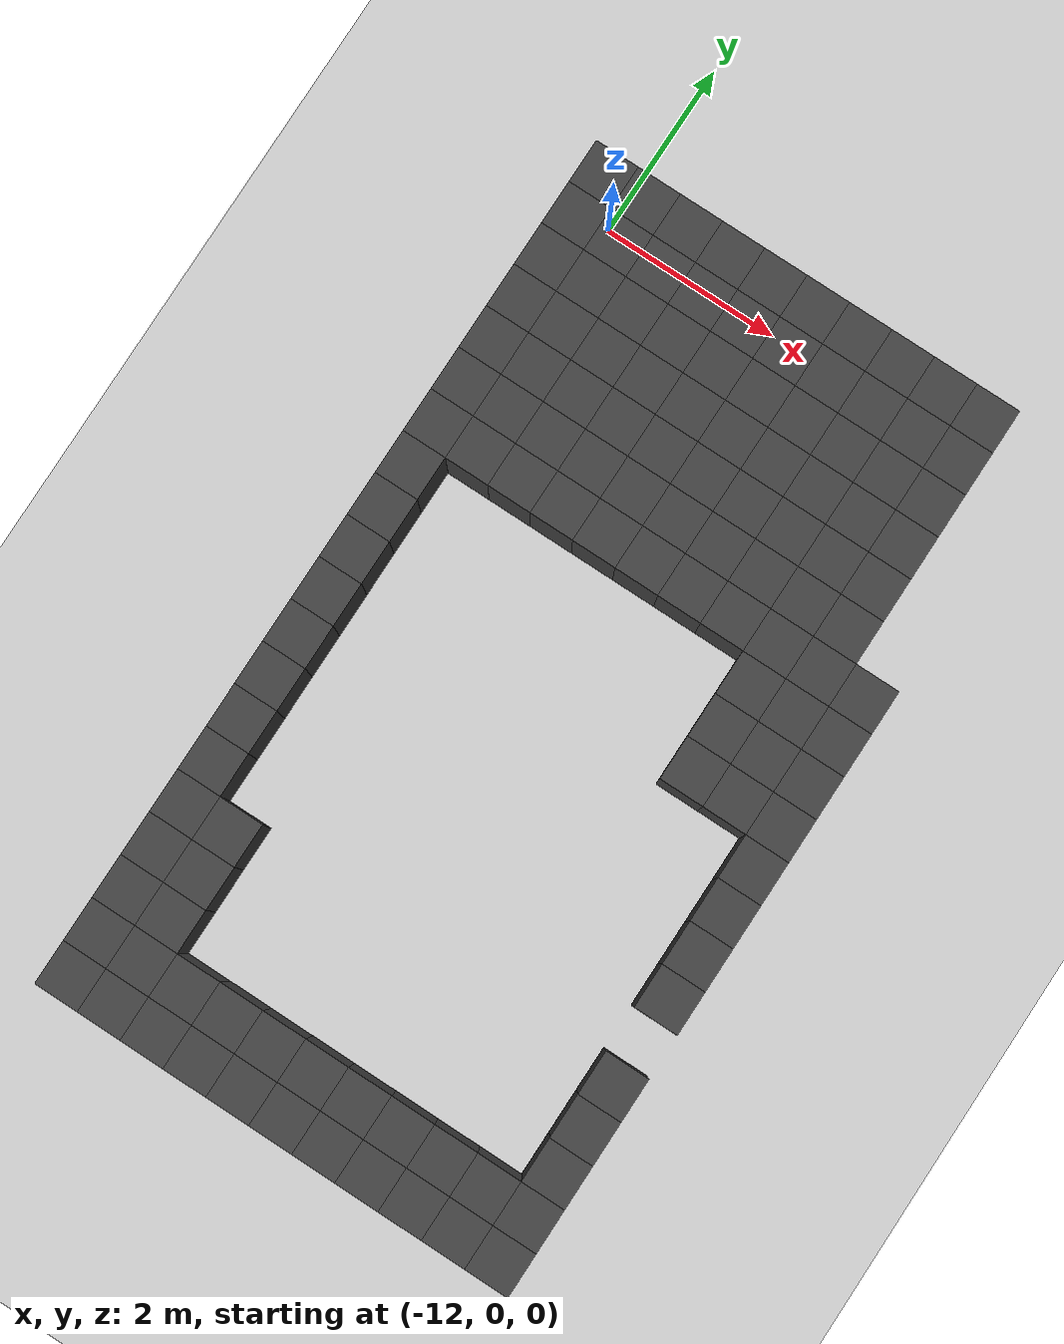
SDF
<sdf version="1.7">
 <world name="map_14074">
  <model name="ground_plane">
   <static>true</static>
   <link name="link">
    <collision name="collision">
     <geometry><plane><normal>0 0 1</normal><size>200 200</size></plane></geometry>
    </collision>
    <visual name="visual">
     <geometry><plane><normal>0 0 1</normal><size>200 200</size></plane></geometry>
     <material><ambient>0.8 0.8 0.8 1</ambient><diffuse>0.8 0.8 0.8 1</diffuse></material>
    </visual>
   </link>
  </model>
  <model name="maze_environment">
   <static>true</static>
   <link name="wall_949">
    <pose>-12.250 0.250 0.500 0 0 0</pose>
    <collision name="col"><geometry><box><size>0.5 0.5 1.0</size></box></geometry></collision>
    <visual name="vis">
     <geometry><box><size>0.5 0.5 1.0</size></box></geometry>
     <material><ambient>0.15 0.15 0.15 1</ambient><diffuse>0.25 0.25 0.25 1</diffuse></material>
    </visual>
   </link>
   <link name="wall_950">
    <pose>-11.750 0.250 0.500 0 0 0</pose>
    <collision name="col"><geometry><box><size>0.5 0.5 1.0</size></box></geometry></collision>
    <visual name="vis">
     <geometry><box><size>0.5 0.5 1.0</size></box></geometry>
     <material><ambient>0.15 0.15 0.15 1</ambient><diffuse>0.25 0.25 0.25 1</diffuse></material>
    </visual>
   </link>
   <link name="wall_951">
    <pose>-11.250 0.250 0.500 0 0 0</pose>
    <collision name="col"><geometry><box><size>0.5 0.5 1.0</size></box></geometry></collision>
    <visual name="vis">
     <geometry><box><size>0.5 0.5 1.0</size></box></geometry>
     <material><ambient>0.15 0.15 0.15 1</ambient><diffuse>0.25 0.25 0.25 1</diffuse></material>
    </visual>
   </link>
   <link name="wall_952">
    <pose>-10.750 0.250 0.500 0 0 0</pose>
    <collision name="col"><geometry><box><size>0.5 0.5 1.0</size></box></geometry></collision>
    <visual name="vis">
     <geometry><box><size>0.5 0.5 1.0</size></box></geometry>
     <material><ambient>0.15 0.15 0.15 1</ambient><diffuse>0.25 0.25 0.25 1</diffuse></material>
    </visual>
   </link>
   <link name="wall_953">
    <pose>-10.250 0.250 0.500 0 0 0</pose>
    <collision name="col"><geometry><box><size>0.5 0.5 1.0</size></box></geometry></collision>
    <visual name="vis">
     <geometry><box><size>0.5 0.5 1.0</size></box></geometry>
     <material><ambient>0.15 0.15 0.15 1</ambient><diffuse>0.25 0.25 0.25 1</diffuse></material>
    </visual>
   </link>
   <link name="wall_954">
    <pose>-9.750 0.250 0.500 0 0 0</pose>
    <collision name="col"><geometry><box><size>0.5 0.5 1.0</size></box></geometry></collision>
    <visual name="vis">
     <geometry><box><size>0.5 0.5 1.0</size></box></geometry>
     <material><ambient>0.15 0.15 0.15 1</ambient><diffuse>0.25 0.25 0.25 1</diffuse></material>
    </visual>
   </link>
   <link name="wall_955">
    <pose>-9.250 0.250 0.500 0 0 0</pose>
    <collision name="col"><geometry><box><size>0.5 0.5 1.0</size></box></geometry></collision>
    <visual name="vis">
     <geometry><box><size>0.5 0.5 1.0</size></box></geometry>
     <material><ambient>0.15 0.15 0.15 1</ambient><diffuse>0.25 0.25 0.25 1</diffuse></material>
    </visual>
   </link>
   <link name="wall_956">
    <pose>-8.750 0.250 0.500 0 0 0</pose>
    <collision name="col"><geometry><box><size>0.5 0.5 1.0</size></box></geometry></collision>
    <visual name="vis">
     <geometry><box><size>0.5 0.5 1.0</size></box></geometry>
     <material><ambient>0.15 0.15 0.15 1</ambient><diffuse>0.25 0.25 0.25 1</diffuse></material>
    </visual>
   </link>
   <link name="wall_957">
    <pose>-8.250 0.250 0.500 0 0 0</pose>
    <collision name="col"><geometry><box><size>0.5 0.5 1.0</size></box></geometry></collision>
    <visual name="vis">
     <geometry><box><size>0.5 0.5 1.0</size></box></geometry>
     <material><ambient>0.15 0.15 0.15 1</ambient><diffuse>0.25 0.25 0.25 1</diffuse></material>
    </visual>
   </link>
   <link name="wall_958">
    <pose>-7.750 0.250 0.500 0 0 0</pose>
    <collision name="col"><geometry><box><size>0.5 0.5 1.0</size></box></geometry></collision>
    <visual name="vis">
     <geometry><box><size>0.5 0.5 1.0</size></box></geometry>
     <material><ambient>0.15 0.15 0.15 1</ambient><diffuse>0.25 0.25 0.25 1</diffuse></material>
    </visual>
   </link>
   <link name="wall_987">
    <pose>-12.250 -0.250 0.500 0 0 0</pose>
    <collision name="col"><geometry><box><size>0.5 0.5 1.0</size></box></geometry></collision>
    <visual name="vis">
     <geometry><box><size>0.5 0.5 1.0</size></box></geometry>
     <material><ambient>0.15 0.15 0.15 1</ambient><diffuse>0.25 0.25 0.25 1</diffuse></material>
    </visual>
   </link>
   <link name="wall_988">
    <pose>-11.750 -0.250 0.500 0 0 0</pose>
    <collision name="col"><geometry><box><size>0.5 0.5 1.0</size></box></geometry></collision>
    <visual name="vis">
     <geometry><box><size>0.5 0.5 1.0</size></box></geometry>
     <material><ambient>0.15 0.15 0.15 1</ambient><diffuse>0.25 0.25 0.25 1</diffuse></material>
    </visual>
   </link>
   <link name="wall_989">
    <pose>-11.250 -0.250 0.500 0 0 0</pose>
    <collision name="col"><geometry><box><size>0.5 0.5 1.0</size></box></geometry></collision>
    <visual name="vis">
     <geometry><box><size>0.5 0.5 1.0</size></box></geometry>
     <material><ambient>0.15 0.15 0.15 1</ambient><diffuse>0.25 0.25 0.25 1</diffuse></material>
    </visual>
   </link>
   <link name="wall_990">
    <pose>-10.750 -0.250 0.500 0 0 0</pose>
    <collision name="col"><geometry><box><size>0.5 0.5 1.0</size></box></geometry></collision>
    <visual name="vis">
     <geometry><box><size>0.5 0.5 1.0</size></box></geometry>
     <material><ambient>0.15 0.15 0.15 1</ambient><diffuse>0.25 0.25 0.25 1</diffuse></material>
    </visual>
   </link>
   <link name="wall_991">
    <pose>-10.250 -0.250 0.500 0 0 0</pose>
    <collision name="col"><geometry><box><size>0.5 0.5 1.0</size></box></geometry></collision>
    <visual name="vis">
     <geometry><box><size>0.5 0.5 1.0</size></box></geometry>
     <material><ambient>0.15 0.15 0.15 1</ambient><diffuse>0.25 0.25 0.25 1</diffuse></material>
    </visual>
   </link>
   <link name="wall_992">
    <pose>-9.750 -0.250 0.500 0 0 0</pose>
    <collision name="col"><geometry><box><size>0.5 0.5 1.0</size></box></geometry></collision>
    <visual name="vis">
     <geometry><box><size>0.5 0.5 1.0</size></box></geometry>
     <material><ambient>0.15 0.15 0.15 1</ambient><diffuse>0.25 0.25 0.25 1</diffuse></material>
    </visual>
   </link>
   <link name="wall_993">
    <pose>-9.250 -0.250 0.500 0 0 0</pose>
    <collision name="col"><geometry><box><size>0.5 0.5 1.0</size></box></geometry></collision>
    <visual name="vis">
     <geometry><box><size>0.5 0.5 1.0</size></box></geometry>
     <material><ambient>0.15 0.15 0.15 1</ambient><diffuse>0.25 0.25 0.25 1</diffuse></material>
    </visual>
   </link>
   <link name="wall_994">
    <pose>-8.750 -0.250 0.500 0 0 0</pose>
    <collision name="col"><geometry><box><size>0.5 0.5 1.0</size></box></geometry></collision>
    <visual name="vis">
     <geometry><box><size>0.5 0.5 1.0</size></box></geometry>
     <material><ambient>0.15 0.15 0.15 1</ambient><diffuse>0.25 0.25 0.25 1</diffuse></material>
    </visual>
   </link>
   <link name="wall_995">
    <pose>-8.250 -0.250 0.500 0 0 0</pose>
    <collision name="col"><geometry><box><size>0.5 0.5 1.0</size></box></geometry></collision>
    <visual name="vis">
     <geometry><box><size>0.5 0.5 1.0</size></box></geometry>
     <material><ambient>0.15 0.15 0.15 1</ambient><diffuse>0.25 0.25 0.25 1</diffuse></material>
    </visual>
   </link>
   <link name="wall_996">
    <pose>-7.750 -0.250 0.500 0 0 0</pose>
    <collision name="col"><geometry><box><size>0.5 0.5 1.0</size></box></geometry></collision>
    <visual name="vis">
     <geometry><box><size>0.5 0.5 1.0</size></box></geometry>
     <material><ambient>0.15 0.15 0.15 1</ambient><diffuse>0.25 0.25 0.25 1</diffuse></material>
    </visual>
   </link>
   <link name="wall_1025">
    <pose>-12.250 -0.750 0.500 0 0 0</pose>
    <collision name="col"><geometry><box><size>0.5 0.5 1.0</size></box></geometry></collision>
    <visual name="vis">
     <geometry><box><size>0.5 0.5 1.0</size></box></geometry>
     <material><ambient>0.15 0.15 0.15 1</ambient><diffuse>0.25 0.25 0.25 1</diffuse></material>
    </visual>
   </link>
   <link name="wall_1026">
    <pose>-11.750 -0.750 0.500 0 0 0</pose>
    <collision name="col"><geometry><box><size>0.5 0.5 1.0</size></box></geometry></collision>
    <visual name="vis">
     <geometry><box><size>0.5 0.5 1.0</size></box></geometry>
     <material><ambient>0.15 0.15 0.15 1</ambient><diffuse>0.25 0.25 0.25 1</diffuse></material>
    </visual>
   </link>
   <link name="wall_1027">
    <pose>-11.250 -0.750 0.500 0 0 0</pose>
    <collision name="col"><geometry><box><size>0.5 0.5 1.0</size></box></geometry></collision>
    <visual name="vis">
     <geometry><box><size>0.5 0.5 1.0</size></box></geometry>
     <material><ambient>0.15 0.15 0.15 1</ambient><diffuse>0.25 0.25 0.25 1</diffuse></material>
    </visual>
   </link>
   <link name="wall_1028">
    <pose>-10.750 -0.750 0.500 0 0 0</pose>
    <collision name="col"><geometry><box><size>0.5 0.5 1.0</size></box></geometry></collision>
    <visual name="vis">
     <geometry><box><size>0.5 0.5 1.0</size></box></geometry>
     <material><ambient>0.15 0.15 0.15 1</ambient><diffuse>0.25 0.25 0.25 1</diffuse></material>
    </visual>
   </link>
   <link name="wall_1029">
    <pose>-10.250 -0.750 0.500 0 0 0</pose>
    <collision name="col"><geometry><box><size>0.5 0.5 1.0</size></box></geometry></collision>
    <visual name="vis">
     <geometry><box><size>0.5 0.5 1.0</size></box></geometry>
     <material><ambient>0.15 0.15 0.15 1</ambient><diffuse>0.25 0.25 0.25 1</diffuse></material>
    </visual>
   </link>
   <link name="wall_1030">
    <pose>-9.750 -0.750 0.500 0 0 0</pose>
    <collision name="col"><geometry><box><size>0.5 0.5 1.0</size></box></geometry></collision>
    <visual name="vis">
     <geometry><box><size>0.5 0.5 1.0</size></box></geometry>
     <material><ambient>0.15 0.15 0.15 1</ambient><diffuse>0.25 0.25 0.25 1</diffuse></material>
    </visual>
   </link>
   <link name="wall_1031">
    <pose>-9.250 -0.750 0.500 0 0 0</pose>
    <collision name="col"><geometry><box><size>0.5 0.5 1.0</size></box></geometry></collision>
    <visual name="vis">
     <geometry><box><size>0.5 0.5 1.0</size></box></geometry>
     <material><ambient>0.15 0.15 0.15 1</ambient><diffuse>0.25 0.25 0.25 1</diffuse></material>
    </visual>
   </link>
   <link name="wall_1032">
    <pose>-8.750 -0.750 0.500 0 0 0</pose>
    <collision name="col"><geometry><box><size>0.5 0.5 1.0</size></box></geometry></collision>
    <visual name="vis">
     <geometry><box><size>0.5 0.5 1.0</size></box></geometry>
     <material><ambient>0.15 0.15 0.15 1</ambient><diffuse>0.25 0.25 0.25 1</diffuse></material>
    </visual>
   </link>
   <link name="wall_1033">
    <pose>-8.250 -0.750 0.500 0 0 0</pose>
    <collision name="col"><geometry><box><size>0.5 0.5 1.0</size></box></geometry></collision>
    <visual name="vis">
     <geometry><box><size>0.5 0.5 1.0</size></box></geometry>
     <material><ambient>0.15 0.15 0.15 1</ambient><diffuse>0.25 0.25 0.25 1</diffuse></material>
    </visual>
   </link>
   <link name="wall_1034">
    <pose>-7.750 -0.750 0.500 0 0 0</pose>
    <collision name="col"><geometry><box><size>0.5 0.5 1.0</size></box></geometry></collision>
    <visual name="vis">
     <geometry><box><size>0.5 0.5 1.0</size></box></geometry>
     <material><ambient>0.15 0.15 0.15 1</ambient><diffuse>0.25 0.25 0.25 1</diffuse></material>
    </visual>
   </link>
   <link name="wall_1063">
    <pose>-12.250 -1.250 0.500 0 0 0</pose>
    <collision name="col"><geometry><box><size>0.5 0.5 1.0</size></box></geometry></collision>
    <visual name="vis">
     <geometry><box><size>0.5 0.5 1.0</size></box></geometry>
     <material><ambient>0.15 0.15 0.15 1</ambient><diffuse>0.25 0.25 0.25 1</diffuse></material>
    </visual>
   </link>
   <link name="wall_1064">
    <pose>-11.750 -1.250 0.500 0 0 0</pose>
    <collision name="col"><geometry><box><size>0.5 0.5 1.0</size></box></geometry></collision>
    <visual name="vis">
     <geometry><box><size>0.5 0.5 1.0</size></box></geometry>
     <material><ambient>0.15 0.15 0.15 1</ambient><diffuse>0.25 0.25 0.25 1</diffuse></material>
    </visual>
   </link>
   <link name="wall_1065">
    <pose>-11.250 -1.250 0.500 0 0 0</pose>
    <collision name="col"><geometry><box><size>0.5 0.5 1.0</size></box></geometry></collision>
    <visual name="vis">
     <geometry><box><size>0.5 0.5 1.0</size></box></geometry>
     <material><ambient>0.15 0.15 0.15 1</ambient><diffuse>0.25 0.25 0.25 1</diffuse></material>
    </visual>
   </link>
   <link name="wall_1066">
    <pose>-10.750 -1.250 0.500 0 0 0</pose>
    <collision name="col"><geometry><box><size>0.5 0.5 1.0</size></box></geometry></collision>
    <visual name="vis">
     <geometry><box><size>0.5 0.5 1.0</size></box></geometry>
     <material><ambient>0.15 0.15 0.15 1</ambient><diffuse>0.25 0.25 0.25 1</diffuse></material>
    </visual>
   </link>
   <link name="wall_1067">
    <pose>-10.250 -1.250 0.500 0 0 0</pose>
    <collision name="col"><geometry><box><size>0.5 0.5 1.0</size></box></geometry></collision>
    <visual name="vis">
     <geometry><box><size>0.5 0.5 1.0</size></box></geometry>
     <material><ambient>0.15 0.15 0.15 1</ambient><diffuse>0.25 0.25 0.25 1</diffuse></material>
    </visual>
   </link>
   <link name="wall_1068">
    <pose>-9.750 -1.250 0.500 0 0 0</pose>
    <collision name="col"><geometry><box><size>0.5 0.5 1.0</size></box></geometry></collision>
    <visual name="vis">
     <geometry><box><size>0.5 0.5 1.0</size></box></geometry>
     <material><ambient>0.15 0.15 0.15 1</ambient><diffuse>0.25 0.25 0.25 1</diffuse></material>
    </visual>
   </link>
   <link name="wall_1069">
    <pose>-9.250 -1.250 0.500 0 0 0</pose>
    <collision name="col"><geometry><box><size>0.5 0.5 1.0</size></box></geometry></collision>
    <visual name="vis">
     <geometry><box><size>0.5 0.5 1.0</size></box></geometry>
     <material><ambient>0.15 0.15 0.15 1</ambient><diffuse>0.25 0.25 0.25 1</diffuse></material>
    </visual>
   </link>
   <link name="wall_1070">
    <pose>-8.750 -1.250 0.500 0 0 0</pose>
    <collision name="col"><geometry><box><size>0.5 0.5 1.0</size></box></geometry></collision>
    <visual name="vis">
     <geometry><box><size>0.5 0.5 1.0</size></box></geometry>
     <material><ambient>0.15 0.15 0.15 1</ambient><diffuse>0.25 0.25 0.25 1</diffuse></material>
    </visual>
   </link>
   <link name="wall_1071">
    <pose>-8.250 -1.250 0.500 0 0 0</pose>
    <collision name="col"><geometry><box><size>0.5 0.5 1.0</size></box></geometry></collision>
    <visual name="vis">
     <geometry><box><size>0.5 0.5 1.0</size></box></geometry>
     <material><ambient>0.15 0.15 0.15 1</ambient><diffuse>0.25 0.25 0.25 1</diffuse></material>
    </visual>
   </link>
   <link name="wall_1072">
    <pose>-7.750 -1.250 0.500 0 0 0</pose>
    <collision name="col"><geometry><box><size>0.5 0.5 1.0</size></box></geometry></collision>
    <visual name="vis">
     <geometry><box><size>0.5 0.5 1.0</size></box></geometry>
     <material><ambient>0.15 0.15 0.15 1</ambient><diffuse>0.25 0.25 0.25 1</diffuse></material>
    </visual>
   </link>
   <link name="wall_1103">
    <pose>-12.250 -1.750 0.500 0 0 0</pose>
    <collision name="col"><geometry><box><size>0.5 0.5 1.0</size></box></geometry></collision>
    <visual name="vis">
     <geometry><box><size>0.5 0.5 1.0</size></box></geometry>
     <material><ambient>0.15 0.15 0.15 1</ambient><diffuse>0.25 0.25 0.25 1</diffuse></material>
    </visual>
   </link>
   <link name="wall_1104">
    <pose>-11.750 -1.750 0.500 0 0 0</pose>
    <collision name="col"><geometry><box><size>0.5 0.5 1.0</size></box></geometry></collision>
    <visual name="vis">
     <geometry><box><size>0.5 0.5 1.0</size></box></geometry>
     <material><ambient>0.15 0.15 0.15 1</ambient><diffuse>0.25 0.25 0.25 1</diffuse></material>
    </visual>
   </link>
   <link name="wall_1105">
    <pose>-11.250 -1.750 0.500 0 0 0</pose>
    <collision name="col"><geometry><box><size>0.5 0.5 1.0</size></box></geometry></collision>
    <visual name="vis">
     <geometry><box><size>0.5 0.5 1.0</size></box></geometry>
     <material><ambient>0.15 0.15 0.15 1</ambient><diffuse>0.25 0.25 0.25 1</diffuse></material>
    </visual>
   </link>
   <link name="wall_1106">
    <pose>-10.750 -1.750 0.500 0 0 0</pose>
    <collision name="col"><geometry><box><size>0.5 0.5 1.0</size></box></geometry></collision>
    <visual name="vis">
     <geometry><box><size>0.5 0.5 1.0</size></box></geometry>
     <material><ambient>0.15 0.15 0.15 1</ambient><diffuse>0.25 0.25 0.25 1</diffuse></material>
    </visual>
   </link>
   <link name="wall_1107">
    <pose>-10.250 -1.750 0.500 0 0 0</pose>
    <collision name="col"><geometry><box><size>0.5 0.5 1.0</size></box></geometry></collision>
    <visual name="vis">
     <geometry><box><size>0.5 0.5 1.0</size></box></geometry>
     <material><ambient>0.15 0.15 0.15 1</ambient><diffuse>0.25 0.25 0.25 1</diffuse></material>
    </visual>
   </link>
   <link name="wall_1108">
    <pose>-9.750 -1.750 0.500 0 0 0</pose>
    <collision name="col"><geometry><box><size>0.5 0.5 1.0</size></box></geometry></collision>
    <visual name="vis">
     <geometry><box><size>0.5 0.5 1.0</size></box></geometry>
     <material><ambient>0.15 0.15 0.15 1</ambient><diffuse>0.25 0.25 0.25 1</diffuse></material>
    </visual>
   </link>
   <link name="wall_1109">
    <pose>-9.250 -1.750 0.500 0 0 0</pose>
    <collision name="col"><geometry><box><size>0.5 0.5 1.0</size></box></geometry></collision>
    <visual name="vis">
     <geometry><box><size>0.5 0.5 1.0</size></box></geometry>
     <material><ambient>0.15 0.15 0.15 1</ambient><diffuse>0.25 0.25 0.25 1</diffuse></material>
    </visual>
   </link>
   <link name="wall_1110">
    <pose>-8.750 -1.750 0.500 0 0 0</pose>
    <collision name="col"><geometry><box><size>0.5 0.5 1.0</size></box></geometry></collision>
    <visual name="vis">
     <geometry><box><size>0.5 0.5 1.0</size></box></geometry>
     <material><ambient>0.15 0.15 0.15 1</ambient><diffuse>0.25 0.25 0.25 1</diffuse></material>
    </visual>
   </link>
   <link name="wall_1111">
    <pose>-8.250 -1.750 0.500 0 0 0</pose>
    <collision name="col"><geometry><box><size>0.5 0.5 1.0</size></box></geometry></collision>
    <visual name="vis">
     <geometry><box><size>0.5 0.5 1.0</size></box></geometry>
     <material><ambient>0.15 0.15 0.15 1</ambient><diffuse>0.25 0.25 0.25 1</diffuse></material>
    </visual>
   </link>
   <link name="wall_1112">
    <pose>-7.750 -1.750 0.500 0 0 0</pose>
    <collision name="col"><geometry><box><size>0.5 0.5 1.0</size></box></geometry></collision>
    <visual name="vis">
     <geometry><box><size>0.5 0.5 1.0</size></box></geometry>
     <material><ambient>0.15 0.15 0.15 1</ambient><diffuse>0.25 0.25 0.25 1</diffuse></material>
    </visual>
   </link>
   <link name="wall_1143">
    <pose>-12.250 -2.250 0.500 0 0 0</pose>
    <collision name="col"><geometry><box><size>0.5 0.5 1.0</size></box></geometry></collision>
    <visual name="vis">
     <geometry><box><size>0.5 0.5 1.0</size></box></geometry>
     <material><ambient>0.15 0.15 0.15 1</ambient><diffuse>0.25 0.25 0.25 1</diffuse></material>
    </visual>
   </link>
   <link name="wall_1144">
    <pose>-11.750 -2.250 0.500 0 0 0</pose>
    <collision name="col"><geometry><box><size>0.5 0.5 1.0</size></box></geometry></collision>
    <visual name="vis">
     <geometry><box><size>0.5 0.5 1.0</size></box></geometry>
     <material><ambient>0.15 0.15 0.15 1</ambient><diffuse>0.25 0.25 0.25 1</diffuse></material>
    </visual>
   </link>
   <link name="wall_1145">
    <pose>-11.250 -2.250 0.500 0 0 0</pose>
    <collision name="col"><geometry><box><size>0.5 0.5 1.0</size></box></geometry></collision>
    <visual name="vis">
     <geometry><box><size>0.5 0.5 1.0</size></box></geometry>
     <material><ambient>0.15 0.15 0.15 1</ambient><diffuse>0.25 0.25 0.25 1</diffuse></material>
    </visual>
   </link>
   <link name="wall_1146">
    <pose>-10.750 -2.250 0.500 0 0 0</pose>
    <collision name="col"><geometry><box><size>0.5 0.5 1.0</size></box></geometry></collision>
    <visual name="vis">
     <geometry><box><size>0.5 0.5 1.0</size></box></geometry>
     <material><ambient>0.15 0.15 0.15 1</ambient><diffuse>0.25 0.25 0.25 1</diffuse></material>
    </visual>
   </link>
   <link name="wall_1147">
    <pose>-10.250 -2.250 0.500 0 0 0</pose>
    <collision name="col"><geometry><box><size>0.5 0.5 1.0</size></box></geometry></collision>
    <visual name="vis">
     <geometry><box><size>0.5 0.5 1.0</size></box></geometry>
     <material><ambient>0.15 0.15 0.15 1</ambient><diffuse>0.25 0.25 0.25 1</diffuse></material>
    </visual>
   </link>
   <link name="wall_1148">
    <pose>-9.750 -2.250 0.500 0 0 0</pose>
    <collision name="col"><geometry><box><size>0.5 0.5 1.0</size></box></geometry></collision>
    <visual name="vis">
     <geometry><box><size>0.5 0.5 1.0</size></box></geometry>
     <material><ambient>0.15 0.15 0.15 1</ambient><diffuse>0.25 0.25 0.25 1</diffuse></material>
    </visual>
   </link>
   <link name="wall_1149">
    <pose>-9.250 -2.250 0.500 0 0 0</pose>
    <collision name="col"><geometry><box><size>0.5 0.5 1.0</size></box></geometry></collision>
    <visual name="vis">
     <geometry><box><size>0.5 0.5 1.0</size></box></geometry>
     <material><ambient>0.15 0.15 0.15 1</ambient><diffuse>0.25 0.25 0.25 1</diffuse></material>
    </visual>
   </link>
   <link name="wall_1150">
    <pose>-8.750 -2.250 0.500 0 0 0</pose>
    <collision name="col"><geometry><box><size>0.5 0.5 1.0</size></box></geometry></collision>
    <visual name="vis">
     <geometry><box><size>0.5 0.5 1.0</size></box></geometry>
     <material><ambient>0.15 0.15 0.15 1</ambient><diffuse>0.25 0.25 0.25 1</diffuse></material>
    </visual>
   </link>
   <link name="wall_1151">
    <pose>-8.250 -2.250 0.500 0 0 0</pose>
    <collision name="col"><geometry><box><size>0.5 0.5 1.0</size></box></geometry></collision>
    <visual name="vis">
     <geometry><box><size>0.5 0.5 1.0</size></box></geometry>
     <material><ambient>0.15 0.15 0.15 1</ambient><diffuse>0.25 0.25 0.25 1</diffuse></material>
    </visual>
   </link>
   <link name="wall_1152">
    <pose>-7.750 -2.250 0.500 0 0 0</pose>
    <collision name="col"><geometry><box><size>0.5 0.5 1.0</size></box></geometry></collision>
    <visual name="vis">
     <geometry><box><size>0.5 0.5 1.0</size></box></geometry>
     <material><ambient>0.15 0.15 0.15 1</ambient><diffuse>0.25 0.25 0.25 1</diffuse></material>
    </visual>
   </link>
   <link name="wall_1179">
    <pose>-12.250 -2.750 0.500 0 0 0</pose>
    <collision name="col"><geometry><box><size>0.5 0.5 1.0</size></box></geometry></collision>
    <visual name="vis">
     <geometry><box><size>0.5 0.5 1.0</size></box></geometry>
     <material><ambient>0.15 0.15 0.15 1</ambient><diffuse>0.25 0.25 0.25 1</diffuse></material>
    </visual>
   </link>
   <link name="wall_1180">
    <pose>-11.750 -2.750 0.500 0 0 0</pose>
    <collision name="col"><geometry><box><size>0.5 0.5 1.0</size></box></geometry></collision>
    <visual name="vis">
     <geometry><box><size>0.5 0.5 1.0</size></box></geometry>
     <material><ambient>0.15 0.15 0.15 1</ambient><diffuse>0.25 0.25 0.25 1</diffuse></material>
    </visual>
   </link>
   <link name="wall_1181">
    <pose>-11.250 -2.750 0.500 0 0 0</pose>
    <collision name="col"><geometry><box><size>0.5 0.5 1.0</size></box></geometry></collision>
    <visual name="vis">
     <geometry><box><size>0.5 0.5 1.0</size></box></geometry>
     <material><ambient>0.15 0.15 0.15 1</ambient><diffuse>0.25 0.25 0.25 1</diffuse></material>
    </visual>
   </link>
   <link name="wall_1182">
    <pose>-10.750 -2.750 0.500 0 0 0</pose>
    <collision name="col"><geometry><box><size>0.5 0.5 1.0</size></box></geometry></collision>
    <visual name="vis">
     <geometry><box><size>0.5 0.5 1.0</size></box></geometry>
     <material><ambient>0.15 0.15 0.15 1</ambient><diffuse>0.25 0.25 0.25 1</diffuse></material>
    </visual>
   </link>
   <link name="wall_1183">
    <pose>-10.250 -2.750 0.500 0 0 0</pose>
    <collision name="col"><geometry><box><size>0.5 0.5 1.0</size></box></geometry></collision>
    <visual name="vis">
     <geometry><box><size>0.5 0.5 1.0</size></box></geometry>
     <material><ambient>0.15 0.15 0.15 1</ambient><diffuse>0.25 0.25 0.25 1</diffuse></material>
    </visual>
   </link>
   <link name="wall_1184">
    <pose>-9.750 -2.750 0.500 0 0 0</pose>
    <collision name="col"><geometry><box><size>0.5 0.5 1.0</size></box></geometry></collision>
    <visual name="vis">
     <geometry><box><size>0.5 0.5 1.0</size></box></geometry>
     <material><ambient>0.15 0.15 0.15 1</ambient><diffuse>0.25 0.25 0.25 1</diffuse></material>
    </visual>
   </link>
   <link name="wall_1185">
    <pose>-9.250 -2.750 0.500 0 0 0</pose>
    <collision name="col"><geometry><box><size>0.5 0.5 1.0</size></box></geometry></collision>
    <visual name="vis">
     <geometry><box><size>0.5 0.5 1.0</size></box></geometry>
     <material><ambient>0.15 0.15 0.15 1</ambient><diffuse>0.25 0.25 0.25 1</diffuse></material>
    </visual>
   </link>
   <link name="wall_1186">
    <pose>-8.750 -2.750 0.500 0 0 0</pose>
    <collision name="col"><geometry><box><size>0.5 0.5 1.0</size></box></geometry></collision>
    <visual name="vis">
     <geometry><box><size>0.5 0.5 1.0</size></box></geometry>
     <material><ambient>0.15 0.15 0.15 1</ambient><diffuse>0.25 0.25 0.25 1</diffuse></material>
    </visual>
   </link>
   <link name="wall_1187">
    <pose>-8.250 -2.750 0.500 0 0 0</pose>
    <collision name="col"><geometry><box><size>0.5 0.5 1.0</size></box></geometry></collision>
    <visual name="vis">
     <geometry><box><size>0.5 0.5 1.0</size></box></geometry>
     <material><ambient>0.15 0.15 0.15 1</ambient><diffuse>0.25 0.25 0.25 1</diffuse></material>
    </visual>
   </link>
   <link name="wall_1188">
    <pose>-7.750 -2.750 0.500 0 0 0</pose>
    <collision name="col"><geometry><box><size>0.5 0.5 1.0</size></box></geometry></collision>
    <visual name="vis">
     <geometry><box><size>0.5 0.5 1.0</size></box></geometry>
     <material><ambient>0.15 0.15 0.15 1</ambient><diffuse>0.25 0.25 0.25 1</diffuse></material>
    </visual>
   </link>
   <link name="wall_1189">
    <pose>-7.250 -2.750 0.500 0 0 0</pose>
    <collision name="col"><geometry><box><size>0.5 0.5 1.0</size></box></geometry></collision>
    <visual name="vis">
     <geometry><box><size>0.5 0.5 1.0</size></box></geometry>
     <material><ambient>0.15 0.15 0.15 1</ambient><diffuse>0.25 0.25 0.25 1</diffuse></material>
    </visual>
   </link>
   <link name="wall_1216">
    <pose>-12.250 -3.250 0.500 0 0 0</pose>
    <collision name="col"><geometry><box><size>0.5 0.5 1.0</size></box></geometry></collision>
    <visual name="vis">
     <geometry><box><size>0.5 0.5 1.0</size></box></geometry>
     <material><ambient>0.15 0.15 0.15 1</ambient><diffuse>0.25 0.25 0.25 1</diffuse></material>
    </visual>
   </link>
   <link name="wall_1217">
    <pose>-8.250 -3.250 0.500 0 0 0</pose>
    <collision name="col"><geometry><box><size>0.5 0.5 1.0</size></box></geometry></collision>
    <visual name="vis">
     <geometry><box><size>0.5 0.5 1.0</size></box></geometry>
     <material><ambient>0.15 0.15 0.15 1</ambient><diffuse>0.25 0.25 0.25 1</diffuse></material>
    </visual>
   </link>
   <link name="wall_1218">
    <pose>-7.750 -3.250 0.500 0 0 0</pose>
    <collision name="col"><geometry><box><size>0.5 0.5 1.0</size></box></geometry></collision>
    <visual name="vis">
     <geometry><box><size>0.5 0.5 1.0</size></box></geometry>
     <material><ambient>0.15 0.15 0.15 1</ambient><diffuse>0.25 0.25 0.25 1</diffuse></material>
    </visual>
   </link>
   <link name="wall_1219">
    <pose>-7.250 -3.250 0.500 0 0 0</pose>
    <collision name="col"><geometry><box><size>0.5 0.5 1.0</size></box></geometry></collision>
    <visual name="vis">
     <geometry><box><size>0.5 0.5 1.0</size></box></geometry>
     <material><ambient>0.15 0.15 0.15 1</ambient><diffuse>0.25 0.25 0.25 1</diffuse></material>
    </visual>
   </link>
   <link name="wall_1246">
    <pose>-12.250 -3.750 0.500 0 0 0</pose>
    <collision name="col"><geometry><box><size>0.5 0.5 1.0</size></box></geometry></collision>
    <visual name="vis">
     <geometry><box><size>0.5 0.5 1.0</size></box></geometry>
     <material><ambient>0.15 0.15 0.15 1</ambient><diffuse>0.25 0.25 0.25 1</diffuse></material>
    </visual>
   </link>
   <link name="wall_1247">
    <pose>-8.250 -3.750 0.500 0 0 0</pose>
    <collision name="col"><geometry><box><size>0.5 0.5 1.0</size></box></geometry></collision>
    <visual name="vis">
     <geometry><box><size>0.5 0.5 1.0</size></box></geometry>
     <material><ambient>0.15 0.15 0.15 1</ambient><diffuse>0.25 0.25 0.25 1</diffuse></material>
    </visual>
   </link>
   <link name="wall_1248">
    <pose>-7.750 -3.750 0.500 0 0 0</pose>
    <collision name="col"><geometry><box><size>0.5 0.5 1.0</size></box></geometry></collision>
    <visual name="vis">
     <geometry><box><size>0.5 0.5 1.0</size></box></geometry>
     <material><ambient>0.15 0.15 0.15 1</ambient><diffuse>0.25 0.25 0.25 1</diffuse></material>
    </visual>
   </link>
   <link name="wall_1249">
    <pose>-7.250 -3.750 0.500 0 0 0</pose>
    <collision name="col"><geometry><box><size>0.5 0.5 1.0</size></box></geometry></collision>
    <visual name="vis">
     <geometry><box><size>0.5 0.5 1.0</size></box></geometry>
     <material><ambient>0.15 0.15 0.15 1</ambient><diffuse>0.25 0.25 0.25 1</diffuse></material>
    </visual>
   </link>
   <link name="wall_1276">
    <pose>-12.250 -4.250 0.500 0 0 0</pose>
    <collision name="col"><geometry><box><size>0.5 0.5 1.0</size></box></geometry></collision>
    <visual name="vis">
     <geometry><box><size>0.5 0.5 1.0</size></box></geometry>
     <material><ambient>0.15 0.15 0.15 1</ambient><diffuse>0.25 0.25 0.25 1</diffuse></material>
    </visual>
   </link>
   <link name="wall_1277">
    <pose>-8.250 -4.250 0.500 0 0 0</pose>
    <collision name="col"><geometry><box><size>0.5 0.5 1.0</size></box></geometry></collision>
    <visual name="vis">
     <geometry><box><size>0.5 0.5 1.0</size></box></geometry>
     <material><ambient>0.15 0.15 0.15 1</ambient><diffuse>0.25 0.25 0.25 1</diffuse></material>
    </visual>
   </link>
   <link name="wall_1278">
    <pose>-7.750 -4.250 0.500 0 0 0</pose>
    <collision name="col"><geometry><box><size>0.5 0.5 1.0</size></box></geometry></collision>
    <visual name="vis">
     <geometry><box><size>0.5 0.5 1.0</size></box></geometry>
     <material><ambient>0.15 0.15 0.15 1</ambient><diffuse>0.25 0.25 0.25 1</diffuse></material>
    </visual>
   </link>
   <link name="wall_1279">
    <pose>-7.250 -4.250 0.500 0 0 0</pose>
    <collision name="col"><geometry><box><size>0.5 0.5 1.0</size></box></geometry></collision>
    <visual name="vis">
     <geometry><box><size>0.5 0.5 1.0</size></box></geometry>
     <material><ambient>0.15 0.15 0.15 1</ambient><diffuse>0.25 0.25 0.25 1</diffuse></material>
    </visual>
   </link>
   <link name="wall_1306">
    <pose>-12.250 -4.750 0.500 0 0 0</pose>
    <collision name="col"><geometry><box><size>0.5 0.5 1.0</size></box></geometry></collision>
    <visual name="vis">
     <geometry><box><size>0.5 0.5 1.0</size></box></geometry>
     <material><ambient>0.15 0.15 0.15 1</ambient><diffuse>0.25 0.25 0.25 1</diffuse></material>
    </visual>
   </link>
   <link name="wall_1307">
    <pose>-7.250 -4.750 0.500 0 0 0</pose>
    <collision name="col"><geometry><box><size>0.5 0.5 1.0</size></box></geometry></collision>
    <visual name="vis">
     <geometry><box><size>0.5 0.5 1.0</size></box></geometry>
     <material><ambient>0.15 0.15 0.15 1</ambient><diffuse>0.25 0.25 0.25 1</diffuse></material>
    </visual>
   </link>
   <link name="wall_1334">
    <pose>-12.250 -5.250 0.500 0 0 0</pose>
    <collision name="col"><geometry><box><size>0.5 0.5 1.0</size></box></geometry></collision>
    <visual name="vis">
     <geometry><box><size>0.5 0.5 1.0</size></box></geometry>
     <material><ambient>0.15 0.15 0.15 1</ambient><diffuse>0.25 0.25 0.25 1</diffuse></material>
    </visual>
   </link>
   <link name="wall_1335">
    <pose>-7.250 -5.250 0.500 0 0 0</pose>
    <collision name="col"><geometry><box><size>0.5 0.5 1.0</size></box></geometry></collision>
    <visual name="vis">
     <geometry><box><size>0.5 0.5 1.0</size></box></geometry>
     <material><ambient>0.15 0.15 0.15 1</ambient><diffuse>0.25 0.25 0.25 1</diffuse></material>
    </visual>
   </link>
   <link name="wall_1355">
    <pose>-12.250 -5.750 0.500 0 0 0</pose>
    <collision name="col"><geometry><box><size>0.5 0.5 1.0</size></box></geometry></collision>
    <visual name="vis">
     <geometry><box><size>0.5 0.5 1.0</size></box></geometry>
     <material><ambient>0.15 0.15 0.15 1</ambient><diffuse>0.25 0.25 0.25 1</diffuse></material>
    </visual>
   </link>
   <link name="wall_1356">
    <pose>-7.250 -5.750 0.500 0 0 0</pose>
    <collision name="col"><geometry><box><size>0.5 0.5 1.0</size></box></geometry></collision>
    <visual name="vis">
     <geometry><box><size>0.5 0.5 1.0</size></box></geometry>
     <material><ambient>0.15 0.15 0.15 1</ambient><diffuse>0.25 0.25 0.25 1</diffuse></material>
    </visual>
   </link>
   <link name="wall_1377">
    <pose>-12.250 -6.250 0.500 0 0 0</pose>
    <collision name="col"><geometry><box><size>0.5 0.5 1.0</size></box></geometry></collision>
    <visual name="vis">
     <geometry><box><size>0.5 0.5 1.0</size></box></geometry>
     <material><ambient>0.15 0.15 0.15 1</ambient><diffuse>0.25 0.25 0.25 1</diffuse></material>
    </visual>
   </link>
   <link name="wall_1378">
    <pose>-7.250 -6.250 0.500 0 0 0</pose>
    <collision name="col"><geometry><box><size>0.5 0.5 1.0</size></box></geometry></collision>
    <visual name="vis">
     <geometry><box><size>0.5 0.5 1.0</size></box></geometry>
     <material><ambient>0.15 0.15 0.15 1</ambient><diffuse>0.25 0.25 0.25 1</diffuse></material>
    </visual>
   </link>
   <link name="wall_1404">
    <pose>-12.250 -6.750 0.500 0 0 0</pose>
    <collision name="col"><geometry><box><size>0.5 0.5 1.0</size></box></geometry></collision>
    <visual name="vis">
     <geometry><box><size>0.5 0.5 1.0</size></box></geometry>
     <material><ambient>0.15 0.15 0.15 1</ambient><diffuse>0.25 0.25 0.25 1</diffuse></material>
    </visual>
   </link>
   <link name="wall_1427">
    <pose>-12.250 -7.250 0.500 0 0 0</pose>
    <collision name="col"><geometry><box><size>0.5 0.5 1.0</size></box></geometry></collision>
    <visual name="vis">
     <geometry><box><size>0.5 0.5 1.0</size></box></geometry>
     <material><ambient>0.15 0.15 0.15 1</ambient><diffuse>0.25 0.25 0.25 1</diffuse></material>
    </visual>
   </link>
   <link name="wall_1428">
    <pose>-11.750 -7.250 0.500 0 0 0</pose>
    <collision name="col"><geometry><box><size>0.5 0.5 1.0</size></box></geometry></collision>
    <visual name="vis">
     <geometry><box><size>0.5 0.5 1.0</size></box></geometry>
     <material><ambient>0.15 0.15 0.15 1</ambient><diffuse>0.25 0.25 0.25 1</diffuse></material>
    </visual>
   </link>
   <link name="wall_1429">
    <pose>-7.250 -7.250 0.500 0 0 0</pose>
    <collision name="col"><geometry><box><size>0.5 0.5 1.0</size></box></geometry></collision>
    <visual name="vis">
     <geometry><box><size>0.5 0.5 1.0</size></box></geometry>
     <material><ambient>0.15 0.15 0.15 1</ambient><diffuse>0.25 0.25 0.25 1</diffuse></material>
    </visual>
   </link>
   <link name="wall_1452">
    <pose>-12.250 -7.750 0.500 0 0 0</pose>
    <collision name="col"><geometry><box><size>0.5 0.5 1.0</size></box></geometry></collision>
    <visual name="vis">
     <geometry><box><size>0.5 0.5 1.0</size></box></geometry>
     <material><ambient>0.15 0.15 0.15 1</ambient><diffuse>0.25 0.25 0.25 1</diffuse></material>
    </visual>
   </link>
   <link name="wall_1453">
    <pose>-11.750 -7.750 0.500 0 0 0</pose>
    <collision name="col"><geometry><box><size>0.5 0.5 1.0</size></box></geometry></collision>
    <visual name="vis">
     <geometry><box><size>0.5 0.5 1.0</size></box></geometry>
     <material><ambient>0.15 0.15 0.15 1</ambient><diffuse>0.25 0.25 0.25 1</diffuse></material>
    </visual>
   </link>
   <link name="wall_1454">
    <pose>-7.250 -7.750 0.500 0 0 0</pose>
    <collision name="col"><geometry><box><size>0.5 0.5 1.0</size></box></geometry></collision>
    <visual name="vis">
     <geometry><box><size>0.5 0.5 1.0</size></box></geometry>
     <material><ambient>0.15 0.15 0.15 1</ambient><diffuse>0.25 0.25 0.25 1</diffuse></material>
    </visual>
   </link>
   <link name="wall_1477">
    <pose>-12.250 -8.250 0.500 0 0 0</pose>
    <collision name="col"><geometry><box><size>0.5 0.5 1.0</size></box></geometry></collision>
    <visual name="vis">
     <geometry><box><size>0.5 0.5 1.0</size></box></geometry>
     <material><ambient>0.15 0.15 0.15 1</ambient><diffuse>0.25 0.25 0.25 1</diffuse></material>
    </visual>
   </link>
   <link name="wall_1478">
    <pose>-11.750 -8.250 0.500 0 0 0</pose>
    <collision name="col"><geometry><box><size>0.5 0.5 1.0</size></box></geometry></collision>
    <visual name="vis">
     <geometry><box><size>0.5 0.5 1.0</size></box></geometry>
     <material><ambient>0.15 0.15 0.15 1</ambient><diffuse>0.25 0.25 0.25 1</diffuse></material>
    </visual>
   </link>
   <link name="wall_1479">
    <pose>-7.250 -8.250 0.500 0 0 0</pose>
    <collision name="col"><geometry><box><size>0.5 0.5 1.0</size></box></geometry></collision>
    <visual name="vis">
     <geometry><box><size>0.5 0.5 1.0</size></box></geometry>
     <material><ambient>0.15 0.15 0.15 1</ambient><diffuse>0.25 0.25 0.25 1</diffuse></material>
    </visual>
   </link>
   <link name="wall_1504">
    <pose>-12.250 -8.750 0.500 0 0 0</pose>
    <collision name="col"><geometry><box><size>0.5 0.5 1.0</size></box></geometry></collision>
    <visual name="vis">
     <geometry><box><size>0.5 0.5 1.0</size></box></geometry>
     <material><ambient>0.15 0.15 0.15 1</ambient><diffuse>0.25 0.25 0.25 1</diffuse></material>
    </visual>
   </link>
   <link name="wall_1505">
    <pose>-11.750 -8.750 0.500 0 0 0</pose>
    <collision name="col"><geometry><box><size>0.5 0.5 1.0</size></box></geometry></collision>
    <visual name="vis">
     <geometry><box><size>0.5 0.5 1.0</size></box></geometry>
     <material><ambient>0.15 0.15 0.15 1</ambient><diffuse>0.25 0.25 0.25 1</diffuse></material>
    </visual>
   </link>
   <link name="wall_1506">
    <pose>-11.250 -8.750 0.500 0 0 0</pose>
    <collision name="col"><geometry><box><size>0.5 0.5 1.0</size></box></geometry></collision>
    <visual name="vis">
     <geometry><box><size>0.5 0.5 1.0</size></box></geometry>
     <material><ambient>0.15 0.15 0.15 1</ambient><diffuse>0.25 0.25 0.25 1</diffuse></material>
    </visual>
   </link>
   <link name="wall_1507">
    <pose>-10.750 -8.750 0.500 0 0 0</pose>
    <collision name="col"><geometry><box><size>0.5 0.5 1.0</size></box></geometry></collision>
    <visual name="vis">
     <geometry><box><size>0.5 0.5 1.0</size></box></geometry>
     <material><ambient>0.15 0.15 0.15 1</ambient><diffuse>0.25 0.25 0.25 1</diffuse></material>
    </visual>
   </link>
   <link name="wall_1508">
    <pose>-10.250 -8.750 0.500 0 0 0</pose>
    <collision name="col"><geometry><box><size>0.5 0.5 1.0</size></box></geometry></collision>
    <visual name="vis">
     <geometry><box><size>0.5 0.5 1.0</size></box></geometry>
     <material><ambient>0.15 0.15 0.15 1</ambient><diffuse>0.25 0.25 0.25 1</diffuse></material>
    </visual>
   </link>
   <link name="wall_1509">
    <pose>-9.750 -8.750 0.500 0 0 0</pose>
    <collision name="col"><geometry><box><size>0.5 0.5 1.0</size></box></geometry></collision>
    <visual name="vis">
     <geometry><box><size>0.5 0.5 1.0</size></box></geometry>
     <material><ambient>0.15 0.15 0.15 1</ambient><diffuse>0.25 0.25 0.25 1</diffuse></material>
    </visual>
   </link>
   <link name="wall_1510">
    <pose>-9.250 -8.750 0.500 0 0 0</pose>
    <collision name="col"><geometry><box><size>0.5 0.5 1.0</size></box></geometry></collision>
    <visual name="vis">
     <geometry><box><size>0.5 0.5 1.0</size></box></geometry>
     <material><ambient>0.15 0.15 0.15 1</ambient><diffuse>0.25 0.25 0.25 1</diffuse></material>
    </visual>
   </link>
   <link name="wall_1511">
    <pose>-8.750 -8.750 0.500 0 0 0</pose>
    <collision name="col"><geometry><box><size>0.5 0.5 1.0</size></box></geometry></collision>
    <visual name="vis">
     <geometry><box><size>0.5 0.5 1.0</size></box></geometry>
     <material><ambient>0.15 0.15 0.15 1</ambient><diffuse>0.25 0.25 0.25 1</diffuse></material>
    </visual>
   </link>
   <link name="wall_1512">
    <pose>-8.250 -8.750 0.500 0 0 0</pose>
    <collision name="col"><geometry><box><size>0.5 0.5 1.0</size></box></geometry></collision>
    <visual name="vis">
     <geometry><box><size>0.5 0.5 1.0</size></box></geometry>
     <material><ambient>0.15 0.15 0.15 1</ambient><diffuse>0.25 0.25 0.25 1</diffuse></material>
    </visual>
   </link>
   <link name="wall_1513">
    <pose>-7.750 -8.750 0.500 0 0 0</pose>
    <collision name="col"><geometry><box><size>0.5 0.5 1.0</size></box></geometry></collision>
    <visual name="vis">
     <geometry><box><size>0.5 0.5 1.0</size></box></geometry>
     <material><ambient>0.15 0.15 0.15 1</ambient><diffuse>0.25 0.25 0.25 1</diffuse></material>
    </visual>
   </link>
   <link name="wall_1514">
    <pose>-7.250 -8.750 0.500 0 0 0</pose>
    <collision name="col"><geometry><box><size>0.5 0.5 1.0</size></box></geometry></collision>
    <visual name="vis">
     <geometry><box><size>0.5 0.5 1.0</size></box></geometry>
     <material><ambient>0.15 0.15 0.15 1</ambient><diffuse>0.25 0.25 0.25 1</diffuse></material>
    </visual>
   </link>
   <link name="wall_1543">
    <pose>-12.250 -9.250 0.500 0 0 0</pose>
    <collision name="col"><geometry><box><size>0.5 0.5 1.0</size></box></geometry></collision>
    <visual name="vis">
     <geometry><box><size>0.5 0.5 1.0</size></box></geometry>
     <material><ambient>0.15 0.15 0.15 1</ambient><diffuse>0.25 0.25 0.25 1</diffuse></material>
    </visual>
   </link>
   <link name="wall_1544">
    <pose>-11.750 -9.250 0.500 0 0 0</pose>
    <collision name="col"><geometry><box><size>0.5 0.5 1.0</size></box></geometry></collision>
    <visual name="vis">
     <geometry><box><size>0.5 0.5 1.0</size></box></geometry>
     <material><ambient>0.15 0.15 0.15 1</ambient><diffuse>0.25 0.25 0.25 1</diffuse></material>
    </visual>
   </link>
   <link name="wall_1545">
    <pose>-11.250 -9.250 0.500 0 0 0</pose>
    <collision name="col"><geometry><box><size>0.5 0.5 1.0</size></box></geometry></collision>
    <visual name="vis">
     <geometry><box><size>0.5 0.5 1.0</size></box></geometry>
     <material><ambient>0.15 0.15 0.15 1</ambient><diffuse>0.25 0.25 0.25 1</diffuse></material>
    </visual>
   </link>
   <link name="wall_1546">
    <pose>-10.750 -9.250 0.500 0 0 0</pose>
    <collision name="col"><geometry><box><size>0.5 0.5 1.0</size></box></geometry></collision>
    <visual name="vis">
     <geometry><box><size>0.5 0.5 1.0</size></box></geometry>
     <material><ambient>0.15 0.15 0.15 1</ambient><diffuse>0.25 0.25 0.25 1</diffuse></material>
    </visual>
   </link>
   <link name="wall_1547">
    <pose>-10.250 -9.250 0.500 0 0 0</pose>
    <collision name="col"><geometry><box><size>0.5 0.5 1.0</size></box></geometry></collision>
    <visual name="vis">
     <geometry><box><size>0.5 0.5 1.0</size></box></geometry>
     <material><ambient>0.15 0.15 0.15 1</ambient><diffuse>0.25 0.25 0.25 1</diffuse></material>
    </visual>
   </link>
   <link name="wall_1548">
    <pose>-9.750 -9.250 0.500 0 0 0</pose>
    <collision name="col"><geometry><box><size>0.5 0.5 1.0</size></box></geometry></collision>
    <visual name="vis">
     <geometry><box><size>0.5 0.5 1.0</size></box></geometry>
     <material><ambient>0.15 0.15 0.15 1</ambient><diffuse>0.25 0.25 0.25 1</diffuse></material>
    </visual>
   </link>
   <link name="wall_1549">
    <pose>-9.250 -9.250 0.500 0 0 0</pose>
    <collision name="col"><geometry><box><size>0.5 0.5 1.0</size></box></geometry></collision>
    <visual name="vis">
     <geometry><box><size>0.5 0.5 1.0</size></box></geometry>
     <material><ambient>0.15 0.15 0.15 1</ambient><diffuse>0.25 0.25 0.25 1</diffuse></material>
    </visual>
   </link>
   <link name="wall_1550">
    <pose>-8.750 -9.250 0.500 0 0 0</pose>
    <collision name="col"><geometry><box><size>0.5 0.5 1.0</size></box></geometry></collision>
    <visual name="vis">
     <geometry><box><size>0.5 0.5 1.0</size></box></geometry>
     <material><ambient>0.15 0.15 0.15 1</ambient><diffuse>0.25 0.25 0.25 1</diffuse></material>
    </visual>
   </link>
   <link name="wall_1551">
    <pose>-8.250 -9.250 0.500 0 0 0</pose>
    <collision name="col"><geometry><box><size>0.5 0.5 1.0</size></box></geometry></collision>
    <visual name="vis">
     <geometry><box><size>0.5 0.5 1.0</size></box></geometry>
     <material><ambient>0.15 0.15 0.15 1</ambient><diffuse>0.25 0.25 0.25 1</diffuse></material>
    </visual>
   </link>
   <link name="wall_1552">
    <pose>-7.750 -9.250 0.500 0 0 0</pose>
    <collision name="col"><geometry><box><size>0.5 0.5 1.0</size></box></geometry></collision>
    <visual name="vis">
     <geometry><box><size>0.5 0.5 1.0</size></box></geometry>
     <material><ambient>0.15 0.15 0.15 1</ambient><diffuse>0.25 0.25 0.25 1</diffuse></material>
    </visual>
   </link>
   <link name="wall_1553">
    <pose>-7.250 -9.250 0.500 0 0 0</pose>
    <collision name="col"><geometry><box><size>0.5 0.5 1.0</size></box></geometry></collision>
    <visual name="vis">
     <geometry><box><size>0.5 0.5 1.0</size></box></geometry>
     <material><ambient>0.15 0.15 0.15 1</ambient><diffuse>0.25 0.25 0.25 1</diffuse></material>
    </visual>
   </link>
  </model>
 </world>
</sdf>
